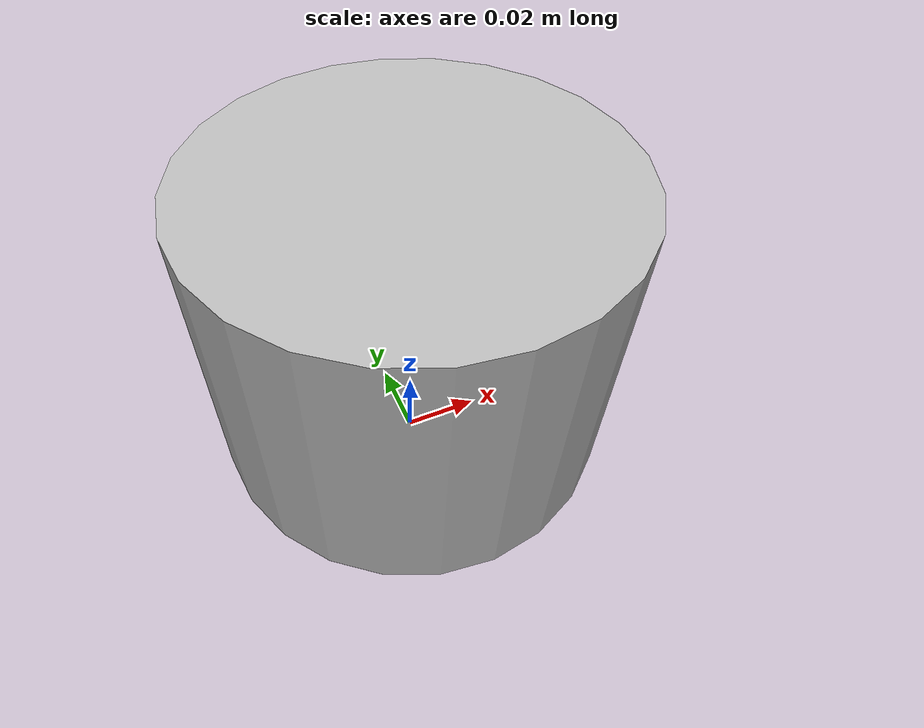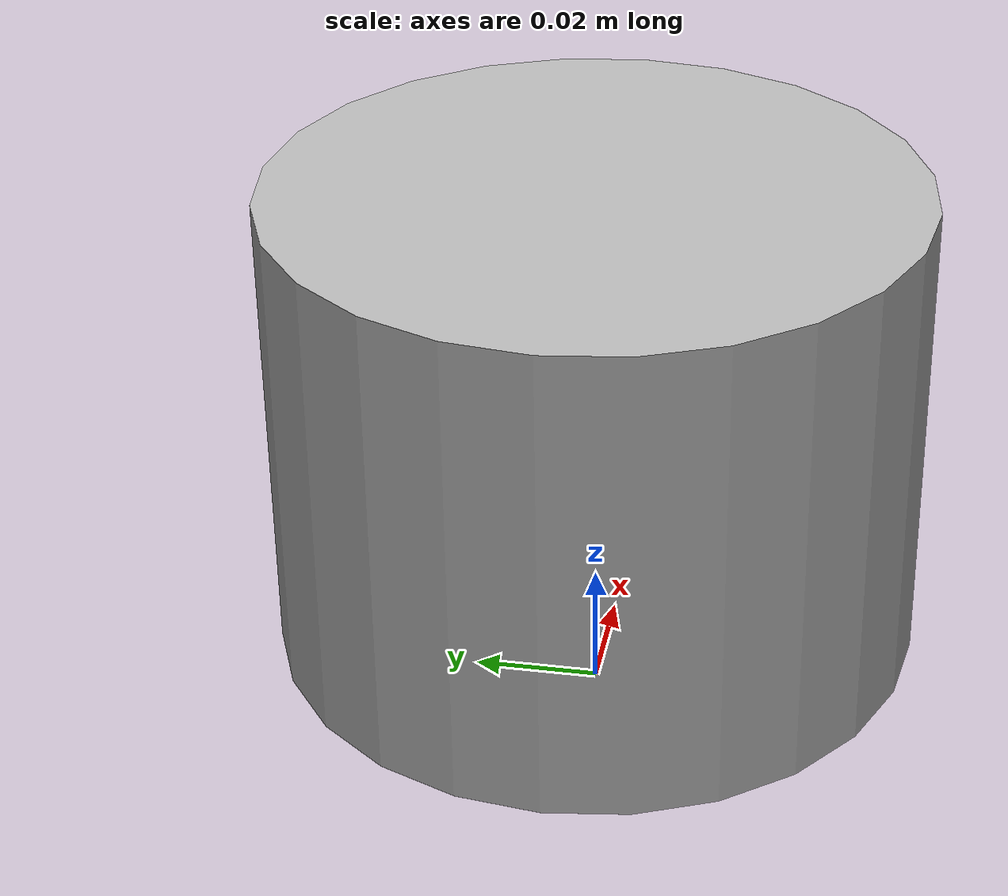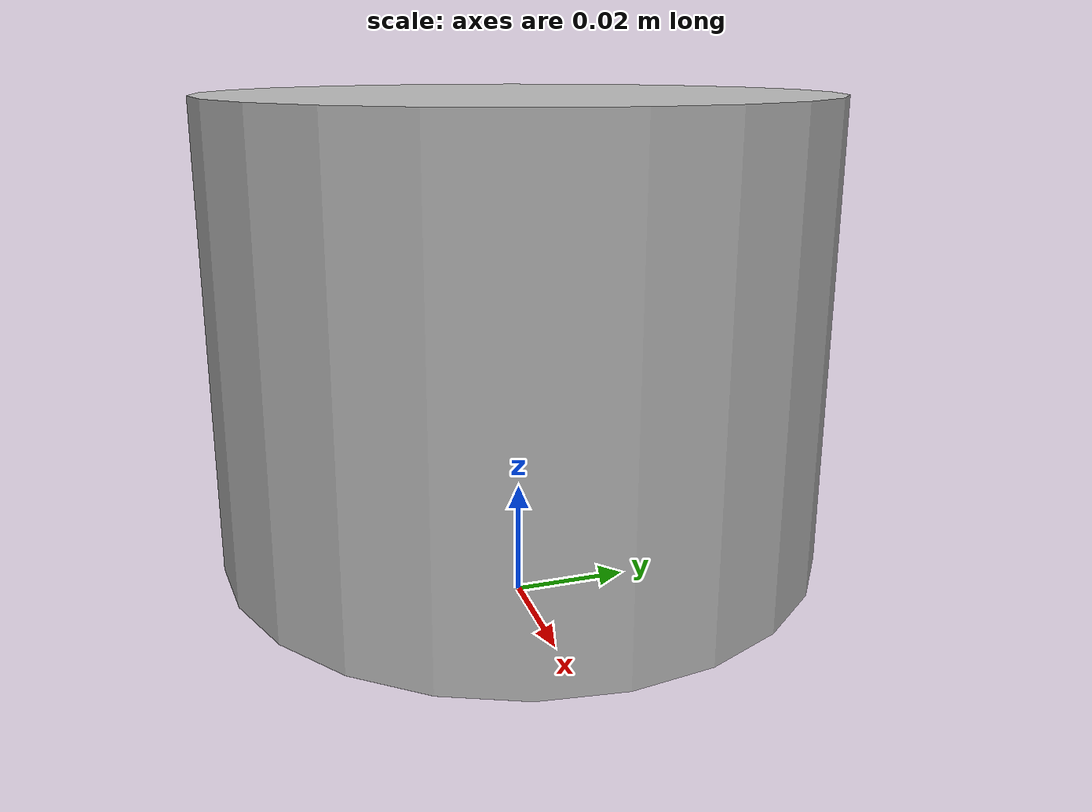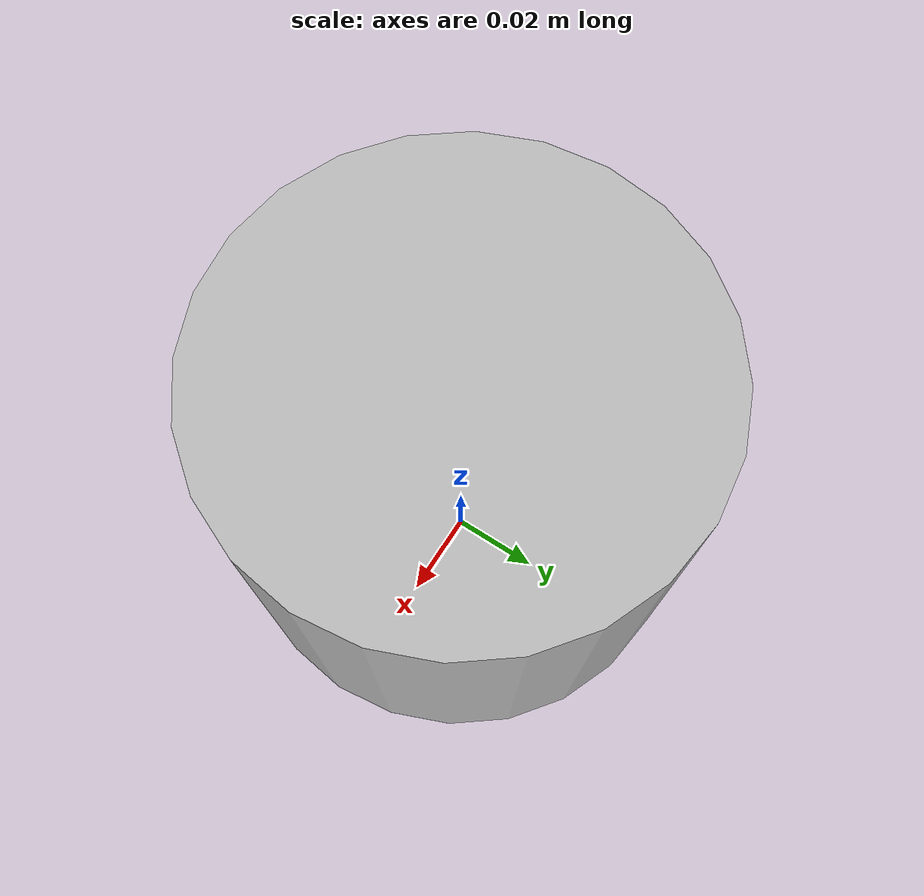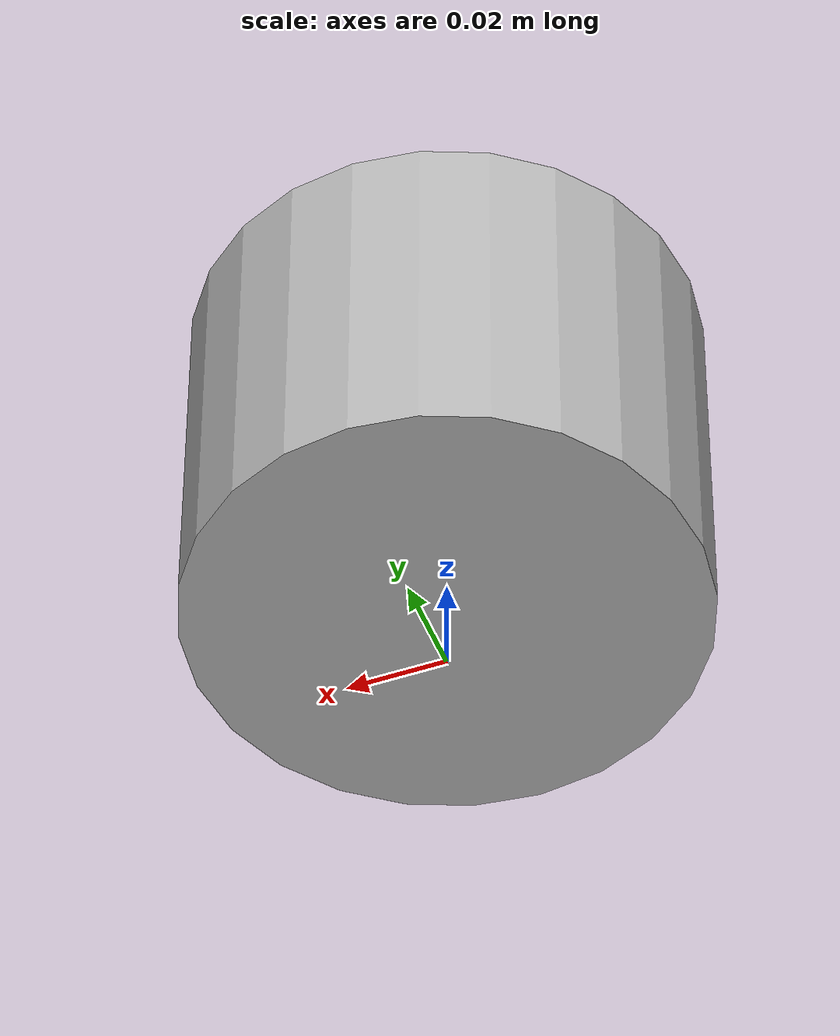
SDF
<?xml version="1.0" ?>
<sdf version="1.4">
    <model name="adaptive_lidar_world">
        <static>true</static>
        <link name="chassis">
            <pose>0 0 0 0 0 0</pose>

            <!-- Base -->
            <collision name="collision">
                <geometry>
                    <cylinder>
                        <radius>0.0508</radius>
                        <length>0.0762</length>
                    </cylinder>
                </geometry>
            </collision>
            <visual name="visual">
                <pose>0 0 0.05 0 0 0</pose>
                <geometry>
                    <cylinder>
                        <radius>0.0508</radius>
                        <length>0.0762</length>
                    </cylinder>
                </geometry>
            </visual>

            <sensor name="fov1" type="ray">
                <pose>0 0 0.1 0 0 0</pose>
                <visualize>true</visualize>
                <ray>
                    <scan>
                        <horizontal>
                            <samples>32</samples>
                            <resolution>1</resolution>
                            <min_angle>-0.06</min_angle>
                            <max_angle>0.06</max_angle>
                        </horizontal>
                        <vertical>
                            <samples>32</samples>
                            <resolution>1</resolution>
                            <min_angle>-0.06</min_angle>
                            <max_angle>0.06</max_angle>
                        </vertical>
                    </scan>
                    <range>
                        <min>0.2</min>
                        <max>3.7</max>
                        <resolution>1</resolution>
                    </range>
                    <noise>
                        <type>gaussian</type>
                        <mean>0</mean>
                        <stddev>0.1</stddev>
                    </noise>
                </ray>
            </sensor>

        </link>
    </model>
</sdf>
